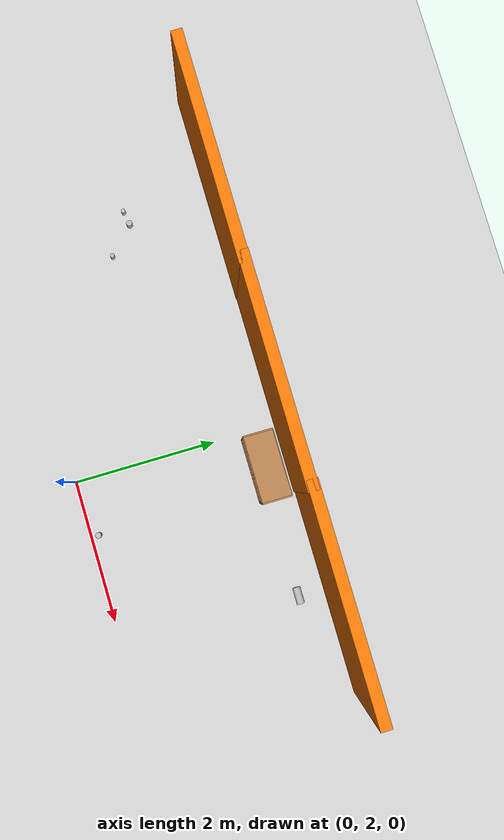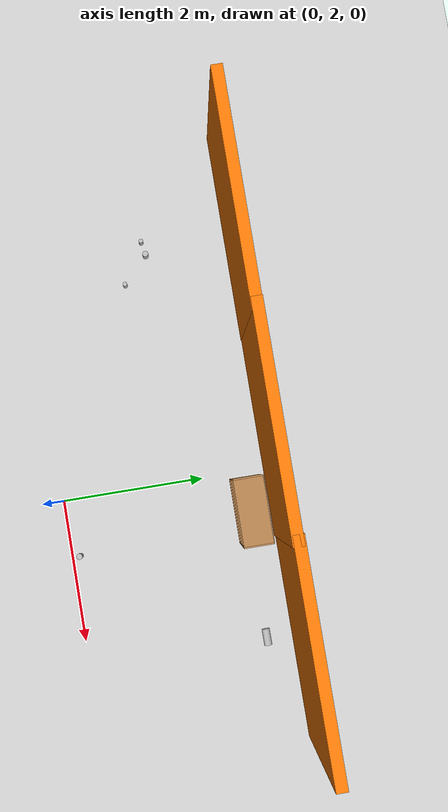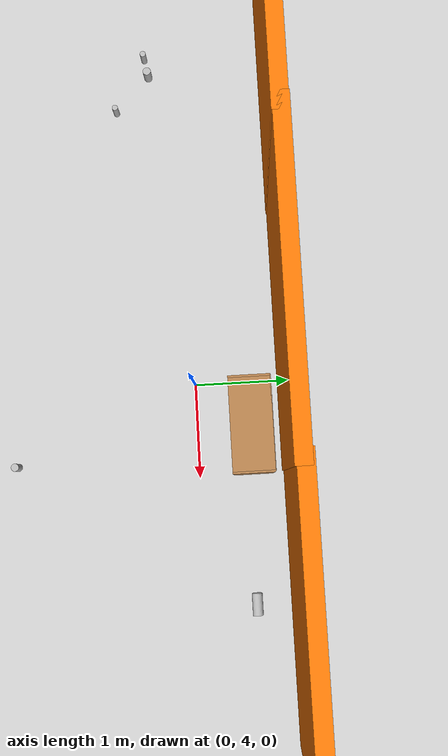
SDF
<sdf version="1.6">
 <world name="default">
  <light name="sun" type="directional">
   <pose>0 0 10 0 -0 0</pose>
   <diffuse>0.8 0.8 0.8 1</diffuse>
   <specular>0.1 0.1 0.1 1</specular>
   <attenuation>
    <range>1000</range>
    <constant>0.9</constant>
    <linear>0.01</linear>
    <quadratic>0.001</quadratic>
   </attenuation>
   <direction>-0.5 0.5 -1</direction>
  </light>
  <model name="ground_plane">
   <static>1</static>
   <link name="link">
    <collision name="collision">
     <geometry><plane><normal>0 0 1</normal><size>100 100</size></plane></geometry>
     <surface><friction><ode><mu>100</mu><mu2>50</mu2></ode></friction></surface>
    </collision>
    <visual name="visual">
     <cast_shadows>0</cast_shadows>
     <geometry><plane><normal>0 0 1</normal><size>100 100</size></plane></geometry>
     <material>
      <script><uri>file://media/materials/scripts/gazebo.material</uri><name>Gazebo/Grey</name></script>
     </material>
    </visual>
   </link>
  </model>
  <gravity>0 0 -9.8</gravity>
  <magnetic_field>6e-06 2.3e-05 -4.2e-05</magnetic_field>
  <atmosphere type="adiabatic"/>
  <physics name="default_physics" default="0" type="ode">
   <max_step_size>0.001</max_step_size>
   <real_time_factor>1</real_time_factor>
   <real_time_update_rate>1000</real_time_update_rate>
  </physics>
  <scene><ambient>0.4 0.4 0.4 1</ambient><background>0.7 0.7 0.7 1</background><shadows>1</shadows></scene>
  <spherical_coordinates>
   <surface_model>EARTH_WGS84</surface_model>
   <latitude_deg>0</latitude_deg>
   <longitude_deg>0</longitude_deg>
   <elevation>0</elevation>
   <heading_deg>0</heading_deg>
  </spherical_coordinates>
  <model name="Orange_Wall">
   <pose>-0.527096 4.95139 0 0 -0 0</pose>
   <link name="Wall_4">
    <collision name="Wall_4_Collision">
     <geometry><box><size>3 0.15 2.5</size></box></geometry>
     <pose>0 0 1.25 0 -0 0</pose>
    </collision>
    <visual name="Wall_4_Visual">
     <pose>0 0 1.25 0 -0 0</pose>
     <geometry><box><size>3 0.15 2.5</size></box></geometry>
     <material>
      <script><uri>file://media/materials/scripts/gazebo.material</uri><name>Gazebo/Grey</name></script>
      <ambient>0.996078 0.47451 0.0196078 1</ambient>
     </material>
    </visual>
   </link>
   <static>1</static>
  </model>
  <model name="Orange_Wall_clone">
   <pose>2.32327 4.96752 0 0 -0 0</pose>
   <link name="Wall_4">
    <collision name="Wall_4_Collision">
     <geometry><box><size>3 0.15 2.5</size></box></geometry>
     <pose>0 0 1.25 0 -0 0</pose>
    </collision>
    <visual name="Wall_4_Visual">
     <pose>0 0 1.25 0 -0 0</pose>
     <geometry><box><size>3 0.15 2.5</size></box></geometry>
     <material>
      <script><uri>file://media/materials/scripts/gazebo.material</uri><name>Gazebo/Grey</name></script>
      <ambient>0.996078 0.47451 0.0196078 1</ambient>
     </material>
    </visual>
   </link>
   <static>1</static>
  </model>
  <model name="Orange_Wall_clone_clone">
   <pose>-3.36364 4.94315 0 0 -0 0</pose>
   <link name="Wall_4">
    <collision name="Wall_4_Collision">
     <geometry><box><size>3 0.15 2.5</size></box></geometry>
     <pose>0 0 1.25 0 -0 0</pose>
    </collision>
    <visual name="Wall_4_Visual">
     <pose>0 0 1.25 0 -0 0</pose>
     <geometry><box><size>3 0.15 2.5</size></box></geometry>
     <material>
      <script><uri>file://media/materials/scripts/gazebo.material</uri><name>Gazebo/Grey</name></script>
      <ambient>0.996078 0.47451 0.0196078 1</ambient>
     </material>
    </visual>
   </link>
   <static>1</static>
  </model>
  <model name="cocacola">
   <static>0</static>
   <link name="link">
    <inertial>
     <mass>0.25</mass>
     <inertia><ixx>0</ixx><ixy>0</ixy><ixz>0</ixz><iyy>0</iyy><iyz>0</iyz><izz>0</izz></inertia>
    </inertial>
    <collision name="collision">
     <pose>0 0 0.075 -3.14159 -0 0</pose>
     <geometry><cylinder><radius>0.04</radius><length>0.15</length></cylinder></geometry>
    </collision>
    <visual name="visual">
     <pose>0 0 0.075 -3.14159 -0 0</pose>
     <geometry><cylinder><radius>0.04</radius><length>0.15</length></cylinder></geometry>
     <material>
      <script>
       <uri>model://cocacola/material/scripts</uri>
       <uri>model://cocacola/material/textures</uri>
       <name>Custom/cocacola</name>
      </script>
     </material>
    </visual>
    <velocity_decay><linear>0</linear><angular>0</angular></velocity_decay>
   </link>
   <pose>-3.14342 3.7182 0.660006 1.8e-05 0.00016 5e-06</pose>
  </model>
  <model name="coke_can_slim">
   <static>0</static>
   <link name="link">
    <inertial>
     <mass>0.15</mass>
     <inertia><ixx>2079.98</ixx><ixy>0</ixy><ixz>0</ixz><iyy>2079.98</iyy><iyz>0</iyz><izz>419.21</izz></inertia>
    </inertial>
    <collision name="collision">
     <geometry><cylinder><radius>0.029</radius><length>0.15</length></cylinder></geometry>
    </collision>
    <visual name="visual">
     <geometry><cylinder><radius>0.029</radius><length>0.15</length></cylinder></geometry>
     <material>
      <script>
       <uri>model://coke_can_slim/material/scripts</uri>
       <uri>model://coke_can_slim/material/textures</uri>
       <name>Custom/coke_can_slim</name>
      </script>
     </material>
    </visual>
    <velocity_decay><linear>0</linear><angular>0</angular></velocity_decay>
   </link>
   <pose>-3.32991 3.68567 0.734998 7.6e-05 -0.000245 0</pose>
  </model>
  <model name="coke_can_slim_clone">
   <static>0</static>
   <link name="link">
    <inertial>
     <mass>0.15</mass>
     <inertia><ixx>2079.98</ixx><ixy>0</ixy><ixz>0</ixz><iyy>2079.98</iyy><iyz>0</iyz><izz>419.21</izz></inertia>
    </inertial>
    <collision name="collision">
     <geometry><cylinder><radius>0.029</radius><length>0.15</length></cylinder></geometry>
    </collision>
    <visual name="visual">
     <geometry><cylinder><radius>0.029</radius><length>0.15</length></cylinder></geometry>
     <material>
      <script>
       <uri>model://coke_can_slim/material/scripts</uri>
       <uri>model://coke_can_slim/material/textures</uri>
       <name>Custom/coke_can_slim</name>
      </script>
     </material>
    </visual>
    <velocity_decay><linear>0</linear><angular>0</angular></velocity_decay>
   </link>
   <pose>-2.77725 3.37796 0.734991 3.6e-05 8e-06 -2.68264</pose>
  </model>
  <model name="bookshelf">
   <static>1</static>
   <link name="link">
    <inertial><mass>1</mass></inertial>
    <collision name="back">
     <pose>0 0.005 0.6 0 -0 0</pose>
     <geometry><box><size>0.9 0.01 1.2</size></box></geometry>
    </collision>
    <visual name="visual1">
     <pose>0 0.005 0.6 0 -0 0</pose>
     <geometry><box><size>0.9 0.01 1.2</size></box></geometry>
     <material>
      <script><uri>file://media/materials/scripts/gazebo.material</uri><name>Gazebo/Wood</name></script>
     </material>
    </visual>
    <collision name="left_side">
     <pose>0.45 -0.195 0.6 0 -0 0</pose>
     <geometry><box><size>0.02 0.4 1.2</size></box></geometry>
    </collision>
    <visual name="visual2">
     <pose>0.45 -0.195 0.6 0 -0 0</pose>
     <geometry><box><size>0.02 0.4 1.2</size></box></geometry>
     <material>
      <script><uri>file://media/materials/scripts/gazebo.material</uri><name>Gazebo/Wood</name></script>
     </material>
    </visual>
    <collision name="right_side">
     <pose>-0.45 -0.195 0.6 0 -0 0</pose>
     <geometry><box><size>0.02 0.4 1.2</size></box></geometry>
    </collision>
    <visual name="visual3">
     <pose>-0.45 -0.195 0.6 0 -0 0</pose>
     <geometry><box><size>0.02 0.4 1.2</size></box></geometry>
     <material>
      <script><uri>file://media/materials/scripts/gazebo.material</uri><name>Gazebo/Wood</name></script>
     </material>
    </visual>
    <collision name="bottom">
     <pose>0 -0.195 0.03 0 -0 0</pose>
     <geometry><box><size>0.88 0.4 0.06</size></box></geometry>
    </collision>
    <visual name="visual4">
     <pose>0 -0.195 0.03 0 -0 0</pose>
     <geometry><box><size>0.88 0.4 0.06</size></box></geometry>
     <material>
      <script><uri>file://media/materials/scripts/gazebo.material</uri><name>Gazebo/Wood</name></script>
     </material>
    </visual>
    <collision name="top">
     <pose>0 -0.195 1.19 0 -0 0</pose>
     <geometry><box><size>0.88 0.4 0.02</size></box></geometry>
    </collision>
    <visual name="visual5">
     <pose>0 -0.195 1.19 0 -0 0</pose>
     <geometry><box><size>0.88 0.4 0.02</size></box></geometry>
     <material>
      <script><uri>file://media/materials/scripts/gazebo.material</uri><name>Gazebo/Wood</name></script>
     </material>
    </visual>
    <collision name="low_shelf">
     <pose>0 -0.195 0.43 0 -0 0</pose>
     <geometry><box><size>0.88 0.4 0.02</size></box></geometry>
    </collision>
    <visual name="visual6">
     <pose>0 -0.195 0.43 0 -0 0</pose>
     <geometry><box><size>0.88 0.4 0.02</size></box></geometry>
     <material>
      <script><uri>file://media/materials/scripts/gazebo.material</uri><name>Gazebo/Wood</name></script>
     </material>
    </visual>
    <collision name="high_shelf">
     <pose>0 -0.195 0.8 0 -0 0</pose>
     <geometry><box><size>0.88 0.4 0.02</size></box></geometry>
    </collision>
    <visual name="visual7">
     <pose>0 -0.195 0.8 0 -0 0</pose>
     <geometry><box><size>0.88 0.4 0.02</size></box></geometry>
     <material>
      <script><uri>file://media/materials/scripts/gazebo.material</uri><name>Gazebo/Wood</name></script>
     </material>
    </visual>
   </link>
   <pose>0.532727 4.76813 0 0 -0 0</pose>
  </model>
  <model name="pringles">
   <static>0</static>
   <link name="link">
    <inertial>
     <mass>0.25</mass>
     <inertia><ixx>0</ixx><ixy>0</ixy><ixz>0</ixz><iyy>0</iyy><iyz>0</iyz><izz>0</izz></inertia>
    </inertial>
    <collision name="collision">
     <geometry><cylinder><radius>0.04</radius><length>0.235</length></cylinder></geometry>
    </collision>
    <visual name="visual">
     <geometry><cylinder><radius>0.04</radius><length>0.235</length></cylinder></geometry>
     <material>
      <script>
       <uri>model://pringles/material/scripts</uri>
       <uri>model://pringles/material/textures</uri>
       <name>Custom/pringles</name>
      </script>
     </material>
    </visual>
    <velocity_decay><linear>0</linear><angular>0</angular></velocity_decay>
   </link>
   <pose>0.273406 4.50221 0.177502 -3.5e-05 4e-05 6.9e-05</pose>
  </model>
  <model name="pringles_0">
   <static>0</static>
   <link name="link">
    <inertial>
     <mass>0.25</mass>
     <inertia><ixx>0</ixx><ixy>0</ixy><ixz>0</ixz><iyy>0</iyy><iyz>0</iyz><izz>0</izz></inertia>
    </inertial>
    <collision name="collision">
     <geometry><cylinder><radius>0.04</radius><length>0.235</length></cylinder></geometry>
    </collision>
    <visual name="visual">
     <geometry><cylinder><radius>0.04</radius><length>0.235</length></cylinder></geometry>
     <material>
      <script>
       <uri>model://pringles/material/scripts</uri>
       <uri>model://pringles/material/textures</uri>
       <name>Custom/pringles</name>
      </script>
     </material>
    </visual>
    <velocity_decay><linear>0</linear><angular>0</angular></velocity_decay>
   </link>
   <pose>0.687612 4.57827 0.177511 -0.000139 0.000227 -2.15707</pose>
  </model>
  <model name="pringles2">
   <static>0</static>
   <link name="link">
    <inertial>
     <mass>0.25</mass>
     <inertia><ixx>0</ixx><ixy>0</ixy><ixz>0</ixz><iyy>0</iyy><iyz>0</iyz><izz>0</izz></inertia>
    </inertial>
    <collision name="collision">
     <pose>0 0 0.12 -3.14159 -0 0</pose>
     <geometry><cylinder><radius>0.04</radius><length>0.235</length></cylinder></geometry>
    </collision>
    <visual name="visual">
     <pose>0 0 0.12 -3.14159 -0 0</pose>
     <geometry><cylinder><radius>0.04</radius><length>0.235</length></cylinder></geometry>
     <material>
      <script>
       <uri>model://pringles2/material/scripts</uri>
       <uri>model://pringles2/material/textures</uri>
       <name>Custom/pringles2</name>
      </script>
     </material>
    </visual>
    <velocity_decay><linear>0</linear><angular>0</angular></velocity_decay>
   </link>
   <pose>0.51022 4.53643 0.057499 -0.000186 0.000139 -5e-06</pose>
  </model>
  <model name="beer">
   <link name="link">
    <pose>0 0 0.115 0 -0 0</pose>
    <inertial>
     <mass>0.39</mass>
     <inertia><ixx>0.00058</ixx><ixy>0</ixy><ixz>0</ixz><iyy>0.00058</iyy><iyz>0</iyz><izz>0.00019</izz></inertia>
    </inertial>
    <collision name="collision">
     <geometry><cylinder><radius>0.055</radius><length>0.23</length></cylinder></geometry>
    </collision>
    <visual name="visual">
     <geometry><cylinder><radius>0.055</radius><length>0.23</length></cylinder></geometry>
     <material>
      <script>
       <uri>model://beer/materials/scripts</uri>
       <uri>model://beer/materials/textures</uri>
       <name>Beer/Diffuse</name>
      </script>
     </material>
    </visual>
   </link>
   <pose>0.38828 4.53652 0.440001 -1e-06 2.6e-05 0.001325</pose>
  </model>
  <model name="beer_0">
   <link name="link">
    <pose>0 0 0.115 0 -0 0</pose>
    <inertial>
     <mass>0.39</mass>
     <inertia><ixx>0.00058</ixx><ixy>0</ixy><ixz>0</ixz><iyy>0.00058</iyy><iyz>0</iyz><izz>0.00019</izz></inertia>
    </inertial>
    <collision name="collision">
     <geometry><cylinder><radius>0.055</radius><length>0.23</length></cylinder></geometry>
    </collision>
    <visual name="visual">
     <geometry><cylinder><radius>0.055</radius><length>0.23</length></cylinder></geometry>
     <material>
      <script>
       <uri>model://beer/materials/scripts</uri>
       <uri>model://beer/materials/textures</uri>
       <name>Beer/Diffuse</name>
      </script>
     </material>
    </visual>
   </link>
   <pose>2.23692 4.53282 0.055 3.09493 1.57044 3.09493</pose>
  </model>
  <model name="cocacola_0">
   <static>0</static>
   <link name="link">
    <inertial>
     <mass>0.25</mass>
     <inertia><ixx>0</ixx><ixy>0</ixy><ixz>0</ixz><iyy>0</iyy><iyz>0</iyz><izz>0</izz></inertia>
    </inertial>
    <collision name="collision">
     <pose>0 0 0.075 -3.14159 -0 0</pose>
     <geometry><cylinder><radius>0.04</radius><length>0.15</length></cylinder></geometry>
    </collision>
    <visual name="visual">
     <pose>0 0 0.075 -3.14159 -0 0</pose>
     <geometry><cylinder><radius>0.04</radius><length>0.15</length></cylinder></geometry>
     <material>
      <script>
       <uri>model://cocacola/material/scripts</uri>
       <uri>model://cocacola/material/textures</uri>
       <name>Custom/cocacola</name>
      </script>
     </material>
    </visual>
    <velocity_decay><linear>0</linear><angular>0</angular></velocity_decay>
   </link>
   <pose>0.787857 2.14782 0.30001 0.000228 9.1e-05 0</pose>
  </model>
 </world>
</sdf>
